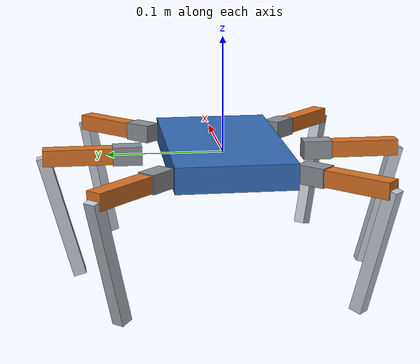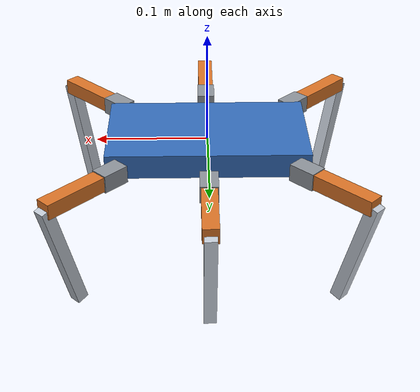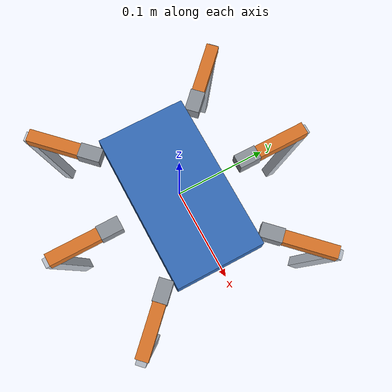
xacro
<?xml version="1.0"?>
<robot xmlns:xacro="http://www.ros.org/wiki/xacro" name="hexapod_body">
  <material name="body"><color rgba="0.20 0.42 0.72 1"/></material>
  <material name="coxa"><color rgba="0.55 0.57 0.60 1"/></material>
  <material name="femur"><color rgba="0.85 0.45 0.15 1"/></material>
  <material name="tibia"><color rgba="0.75 0.78 0.82 1"/></material>
  <material name="arm"><color rgba="0.35 0.36 0.40 1"/></material>
  <link name="base_link">
    <collision><geometry><box size="0.18000 0.10000 0.02200"/></geometry></collision>
    <visual><geometry><box size="0.18000 0.10000 0.02200"/></geometry><material name="body"/></visual>
    <inertial>
      <origin xyz="0.00000 0.00000 0.00000"/>
      <mass value="0.737"/>
      <inertia ixx="6.439e-04" iyy="2.020e-03" izz="2.604e-03" ixy="0" ixz="0" iyz="0"/>
    </inertial>
  </link>

  <!-- leg FL -->
  <joint name="FL_coxa" type="revolute">
    <parent link="base_link"/>
    <child link="FL_coxa_link"/>
    <origin xyz="0.07500 0.05500 0.00000" rpy="0.00000 0.00000 0.78540"/>
    <axis xyz="0 0 1"/>
    <limit lower="-1.3963" upper="1.3963" effort="1.1" velocity="6.5"/>
    <dynamics damping="0.01"/>
  </joint>
  <link name="FL_coxa_link">
    <collision>
      <origin xyz="0.01250 0.00000 0.00000"/>
      <geometry><box size="0.02500 0.01600 0.01600"/></geometry>
    </collision>
    <visual>
      <origin xyz="0.01250 0.00000 0.00000"/>
      <geometry><box size="0.02500 0.01600 0.01600"/></geometry>
      <material name="coxa"/>
    </visual>
    <inertial>
      <origin xyz="0.01250 0.00000 0.00000"/>
      <mass value="0.065"/>
      <inertia ixx="5.028e-04" iyy="5.048e-04" izz="5.048e-04" ixy="0" ixz="0" iyz="0"/>
    </inertial>
  </link>
  <joint name="FL_femur" type="revolute">
    <parent link="FL_coxa_link"/>
    <child link="FL_femur_link"/>
    <origin xyz="0.02500 0.00000 0.00000" rpy="0.00000 0.00000 0.00000"/>
    <axis xyz="0 -1 0"/>
    <limit lower="-0.6109" upper="2.1817" effort="1.1" velocity="6.5"/>
    <dynamics damping="0.01"/>
  </joint>
  <link name="FL_femur_link">
    <collision>
      <origin xyz="0.02950 0.00000 0.00000"/>
      <geometry><box size="0.05900 0.01400 0.01400"/></geometry>
    </collision>
    <visual>
      <origin xyz="0.02950 0.00000 0.00000"/>
      <geometry><box size="0.05900 0.01400 0.01400"/></geometry>
      <material name="femur"/>
    </visual>
    <inertial>
      <origin xyz="0.02950 0.00000 0.00000"/>
      <mass value="0.063"/>
      <inertia ixx="5.021e-04" iyy="5.193e-04" izz="5.193e-04" ixy="0" ixz="0" iyz="0"/>
    </inertial>
  </link>
  <joint name="FL_tibia" type="revolute">
    <parent link="FL_femur_link"/>
    <child link="FL_tibia_link"/>
    <origin xyz="0.05900 0.00000 0.00000" rpy="0.00000 0.00000 0.00000"/>
    <axis xyz="0 -1 0"/>
    <limit lower="-3.2289" upper="-0.4363" effort="1.1" velocity="6.5"/>
    <dynamics damping="0.01"/>
  </joint>
  <link name="FL_tibia_link">
    <collision>
      <origin xyz="0.10900 0 0"/>
      <geometry><sphere radius="0.008"/></geometry>
    </collision>
    <collision>
      <origin xyz="0.05450 0.00000 0.00000" rpy="0 1.570796 0"/>
      <geometry><cylinder radius="0.0055" length="0.0930"/></geometry>
    </collision>
    <visual>
      <origin xyz="0.05450 0.00000 0.00000"/>
      <geometry><box size="0.10900 0.01100 0.01100"/></geometry>
      <material name="tibia"/>
    </visual>
    <inertial>
      <origin xyz="0.05450 0.00000 0.00000"/>
      <mass value="0.008"/>
      <inertia ixx="5.002e-04" iyy="5.080e-04" izz="5.080e-04" ixy="0" ixz="0" iyz="0"/>
    </inertial>
  </link>

  <!-- leg ML -->
  <joint name="ML_coxa" type="revolute">
    <parent link="base_link"/>
    <child link="ML_coxa_link"/>
    <origin xyz="0.00000 0.07000 0.00000" rpy="0.00000 0.00000 1.57080"/>
    <axis xyz="0 0 1"/>
    <limit lower="-1.3963" upper="1.3963" effort="1.1" velocity="6.5"/>
    <dynamics damping="0.01"/>
  </joint>
  <link name="ML_coxa_link">
    <collision>
      <origin xyz="0.01250 0.00000 0.00000"/>
      <geometry><box size="0.02500 0.01600 0.01600"/></geometry>
    </collision>
    <visual>
      <origin xyz="0.01250 0.00000 0.00000"/>
      <geometry><box size="0.02500 0.01600 0.01600"/></geometry>
      <material name="coxa"/>
    </visual>
    <inertial>
      <origin xyz="0.01250 0.00000 0.00000"/>
      <mass value="0.065"/>
      <inertia ixx="5.028e-04" iyy="5.048e-04" izz="5.048e-04" ixy="0" ixz="0" iyz="0"/>
    </inertial>
  </link>
  <joint name="ML_femur" type="revolute">
    <parent link="ML_coxa_link"/>
    <child link="ML_femur_link"/>
    <origin xyz="0.02500 0.00000 0.00000" rpy="0.00000 0.00000 0.00000"/>
    <axis xyz="0 -1 0"/>
    <limit lower="-0.6109" upper="2.1817" effort="1.1" velocity="6.5"/>
    <dynamics damping="0.01"/>
  </joint>
  <link name="ML_femur_link">
    <collision>
      <origin xyz="0.02950 0.00000 0.00000"/>
      <geometry><box size="0.05900 0.01400 0.01400"/></geometry>
    </collision>
    <visual>
      <origin xyz="0.02950 0.00000 0.00000"/>
      <geometry><box size="0.05900 0.01400 0.01400"/></geometry>
      <material name="femur"/>
    </visual>
    <inertial>
      <origin xyz="0.02950 0.00000 0.00000"/>
      <mass value="0.063"/>
      <inertia ixx="5.021e-04" iyy="5.193e-04" izz="5.193e-04" ixy="0" ixz="0" iyz="0"/>
    </inertial>
  </link>
  <joint name="ML_tibia" type="revolute">
    <parent link="ML_femur_link"/>
    <child link="ML_tibia_link"/>
    <origin xyz="0.05900 0.00000 0.00000" rpy="0.00000 0.00000 0.00000"/>
    <axis xyz="0 -1 0"/>
    <limit lower="-3.2289" upper="-0.4363" effort="1.1" velocity="6.5"/>
    <dynamics damping="0.01"/>
  </joint>
  <link name="ML_tibia_link">
    <collision>
      <origin xyz="0.10900 0 0"/>
      <geometry><sphere radius="0.008"/></geometry>
    </collision>
    <collision>
      <origin xyz="0.05450 0.00000 0.00000" rpy="0 1.570796 0"/>
      <geometry><cylinder radius="0.0055" length="0.0930"/></geometry>
    </collision>
    <visual>
      <origin xyz="0.05450 0.00000 0.00000"/>
      <geometry><box size="0.10900 0.01100 0.01100"/></geometry>
      <material name="tibia"/>
    </visual>
    <inertial>
      <origin xyz="0.05450 0.00000 0.00000"/>
      <mass value="0.008"/>
      <inertia ixx="5.002e-04" iyy="5.080e-04" izz="5.080e-04" ixy="0" ixz="0" iyz="0"/>
    </inertial>
  </link>

  <!-- leg RL -->
  <joint name="RL_coxa" type="revolute">
    <parent link="base_link"/>
    <child link="RL_coxa_link"/>
    <origin xyz="-0.07500 0.05500 0.00000" rpy="0.00000 0.00000 2.35619"/>
    <axis xyz="0 0 1"/>
    <limit lower="-1.3963" upper="1.3963" effort="1.1" velocity="6.5"/>
    <dynamics damping="0.01"/>
  </joint>
  <link name="RL_coxa_link">
    <collision>
      <origin xyz="0.01250 0.00000 0.00000"/>
      <geometry><box size="0.02500 0.01600 0.01600"/></geometry>
    </collision>
    <visual>
      <origin xyz="0.01250 0.00000 0.00000"/>
      <geometry><box size="0.02500 0.01600 0.01600"/></geometry>
      <material name="coxa"/>
    </visual>
    <inertial>
      <origin xyz="0.01250 0.00000 0.00000"/>
      <mass value="0.065"/>
      <inertia ixx="5.028e-04" iyy="5.048e-04" izz="5.048e-04" ixy="0" ixz="0" iyz="0"/>
    </inertial>
  </link>
  <joint name="RL_femur" type="revolute">
    <parent link="RL_coxa_link"/>
    <child link="RL_femur_link"/>
    <origin xyz="0.02500 0.00000 0.00000" rpy="0.00000 0.00000 0.00000"/>
    <axis xyz="0 -1 0"/>
    <limit lower="-0.6109" upper="2.1817" effort="1.1" velocity="6.5"/>
    <dynamics damping="0.01"/>
  </joint>
  <link name="RL_femur_link">
    <collision>
      <origin xyz="0.02950 0.00000 0.00000"/>
      <geometry><box size="0.05900 0.01400 0.01400"/></geometry>
    </collision>
    <visual>
      <origin xyz="0.02950 0.00000 0.00000"/>
      <geometry><box size="0.05900 0.01400 0.01400"/></geometry>
      <material name="femur"/>
    </visual>
    <inertial>
      <origin xyz="0.02950 0.00000 0.00000"/>
      <mass value="0.063"/>
      <inertia ixx="5.021e-04" iyy="5.193e-04" izz="5.193e-04" ixy="0" ixz="0" iyz="0"/>
    </inertial>
  </link>
  <joint name="RL_tibia" type="revolute">
    <parent link="RL_femur_link"/>
    <child link="RL_tibia_link"/>
    <origin xyz="0.05900 0.00000 0.00000" rpy="0.00000 0.00000 0.00000"/>
    <axis xyz="0 -1 0"/>
    <limit lower="-3.2289" upper="-0.4363" effort="1.1" velocity="6.5"/>
    <dynamics damping="0.01"/>
  </joint>
  <link name="RL_tibia_link">
    <collision>
      <origin xyz="0.10900 0 0"/>
      <geometry><sphere radius="0.008"/></geometry>
    </collision>
    <collision>
      <origin xyz="0.05450 0.00000 0.00000" rpy="0 1.570796 0"/>
      <geometry><cylinder radius="0.0055" length="0.0930"/></geometry>
    </collision>
    <visual>
      <origin xyz="0.05450 0.00000 0.00000"/>
      <geometry><box size="0.10900 0.01100 0.01100"/></geometry>
      <material name="tibia"/>
    </visual>
    <inertial>
      <origin xyz="0.05450 0.00000 0.00000"/>
      <mass value="0.008"/>
      <inertia ixx="5.002e-04" iyy="5.080e-04" izz="5.080e-04" ixy="0" ixz="0" iyz="0"/>
    </inertial>
  </link>

  <!-- leg FR -->
  <joint name="FR_coxa" type="revolute">
    <parent link="base_link"/>
    <child link="FR_coxa_link"/>
    <origin xyz="0.07500 -0.05500 0.00000" rpy="0.00000 0.00000 -0.78540"/>
    <axis xyz="0 0 1"/>
    <limit lower="-1.3963" upper="1.3963" effort="1.1" velocity="6.5"/>
    <dynamics damping="0.01"/>
  </joint>
  <link name="FR_coxa_link">
    <collision>
      <origin xyz="0.01250 0.00000 0.00000"/>
      <geometry><box size="0.02500 0.01600 0.01600"/></geometry>
    </collision>
    <visual>
      <origin xyz="0.01250 0.00000 0.00000"/>
      <geometry><box size="0.02500 0.01600 0.01600"/></geometry>
      <material name="coxa"/>
    </visual>
    <inertial>
      <origin xyz="0.01250 0.00000 0.00000"/>
      <mass value="0.065"/>
      <inertia ixx="5.028e-04" iyy="5.048e-04" izz="5.048e-04" ixy="0" ixz="0" iyz="0"/>
    </inertial>
  </link>
  <joint name="FR_femur" type="revolute">
    <parent link="FR_coxa_link"/>
    <child link="FR_femur_link"/>
    <origin xyz="0.02500 0.00000 0.00000" rpy="0.00000 0.00000 0.00000"/>
    <axis xyz="0 -1 0"/>
    <limit lower="-0.6109" upper="2.1817" effort="1.1" velocity="6.5"/>
    <dynamics damping="0.01"/>
  </joint>
  <link name="FR_femur_link">
    <collision>
      <origin xyz="0.02950 0.00000 0.00000"/>
      <geometry><box size="0.05900 0.01400 0.01400"/></geometry>
    </collision>
    <visual>
      <origin xyz="0.02950 0.00000 0.00000"/>
      <geometry><box size="0.05900 0.01400 0.01400"/></geometry>
      <material name="femur"/>
    </visual>
    <inertial>
      <origin xyz="0.02950 0.00000 0.00000"/>
      <mass value="0.063"/>
      <inertia ixx="5.021e-04" iyy="5.193e-04" izz="5.193e-04" ixy="0" ixz="0" iyz="0"/>
    </inertial>
  </link>
  <joint name="FR_tibia" type="revolute">
    <parent link="FR_femur_link"/>
    <child link="FR_tibia_link"/>
    <origin xyz="0.05900 0.00000 0.00000" rpy="0.00000 0.00000 0.00000"/>
    <axis xyz="0 -1 0"/>
    <limit lower="-3.2289" upper="-0.4363" effort="1.1" velocity="6.5"/>
    <dynamics damping="0.01"/>
  </joint>
  <link name="FR_tibia_link">
    <collision>
      <origin xyz="0.10900 0 0"/>
      <geometry><sphere radius="0.008"/></geometry>
    </collision>
    <collision>
      <origin xyz="0.05450 0.00000 0.00000" rpy="0 1.570796 0"/>
      <geometry><cylinder radius="0.0055" length="0.0930"/></geometry>
    </collision>
    <visual>
      <origin xyz="0.05450 0.00000 0.00000"/>
      <geometry><box size="0.10900 0.01100 0.01100"/></geometry>
      <material name="tibia"/>
    </visual>
    <inertial>
      <origin xyz="0.05450 0.00000 0.00000"/>
      <mass value="0.008"/>
      <inertia ixx="5.002e-04" iyy="5.080e-04" izz="5.080e-04" ixy="0" ixz="0" iyz="0"/>
    </inertial>
  </link>

  <!-- leg MR -->
  <joint name="MR_coxa" type="revolute">
    <parent link="base_link"/>
    <child link="MR_coxa_link"/>
    <origin xyz="0.00000 -0.07000 0.00000" rpy="0.00000 0.00000 -1.57080"/>
    <axis xyz="0 0 1"/>
    <limit lower="-1.3963" upper="1.3963" effort="1.1" velocity="6.5"/>
    <dynamics damping="0.01"/>
  </joint>
  <link name="MR_coxa_link">
    <collision>
      <origin xyz="0.01250 0.00000 0.00000"/>
      <geometry><box size="0.02500 0.01600 0.01600"/></geometry>
    </collision>
    <visual>
      <origin xyz="0.01250 0.00000 0.00000"/>
      <geometry><box size="0.02500 0.01600 0.01600"/></geometry>
      <material name="coxa"/>
    </visual>
    <inertial>
      <origin xyz="0.01250 0.00000 0.00000"/>
      <mass value="0.065"/>
      <inertia ixx="5.028e-04" iyy="5.048e-04" izz="5.048e-04" ixy="0" ixz="0" iyz="0"/>
    </inertial>
  </link>
  <joint name="MR_femur" type="revolute">
    <parent link="MR_coxa_link"/>
    <child link="MR_femur_link"/>
    <origin xyz="0.02500 0.00000 0.00000" rpy="0.00000 0.00000 0.00000"/>
    <axis xyz="0 -1 0"/>
    <limit lower="-0.6109" upper="2.1817" effort="1.1" velocity="6.5"/>
    <dynamics damping="0.01"/>
  </joint>
  <link name="MR_femur_link">
    <collision>
      <origin xyz="0.02950 0.00000 0.00000"/>
      <geometry><box size="0.05900 0.01400 0.01400"/></geometry>
    </collision>
    <visual>
      <origin xyz="0.02950 0.00000 0.00000"/>
      <geometry><box size="0.05900 0.01400 0.01400"/></geometry>
      <material name="femur"/>
    </visual>
    <inertial>
      <origin xyz="0.02950 0.00000 0.00000"/>
      <mass value="0.063"/>
      <inertia ixx="5.021e-04" iyy="5.193e-04" izz="5.193e-04" ixy="0" ixz="0" iyz="0"/>
    </inertial>
  </link>
  <joint name="MR_tibia" type="revolute">
    <parent link="MR_femur_link"/>
    <child link="MR_tibia_link"/>
    <origin xyz="0.05900 0.00000 0.00000" rpy="0.00000 0.00000 0.00000"/>
    <axis xyz="0 -1 0"/>
    <limit lower="-3.2289" upper="-0.4363" effort="1.1" velocity="6.5"/>
    <dynamics damping="0.01"/>
  </joint>
  <link name="MR_tibia_link">
    <collision>
      <origin xyz="0.10900 0 0"/>
      <geometry><sphere radius="0.008"/></geometry>
    </collision>
    <collision>
      <origin xyz="0.05450 0.00000 0.00000" rpy="0 1.570796 0"/>
      <geometry><cylinder radius="0.0055" length="0.0930"/></geometry>
    </collision>
    <visual>
      <origin xyz="0.05450 0.00000 0.00000"/>
      <geometry><box size="0.10900 0.01100 0.01100"/></geometry>
      <material name="tibia"/>
    </visual>
    <inertial>
      <origin xyz="0.05450 0.00000 0.00000"/>
      <mass value="0.008"/>
      <inertia ixx="5.002e-04" iyy="5.080e-04" izz="5.080e-04" ixy="0" ixz="0" iyz="0"/>
    </inertial>
  </link>

  <!-- leg RR -->
  <joint name="RR_coxa" type="revolute">
    <parent link="base_link"/>
    <child link="RR_coxa_link"/>
    <origin xyz="-0.07500 -0.05500 0.00000" rpy="0.00000 0.00000 -2.35619"/>
    <axis xyz="0 0 1"/>
    <limit lower="-1.3963" upper="1.3963" effort="1.1" velocity="6.5"/>
    <dynamics damping="0.01"/>
  </joint>
  <link name="RR_coxa_link">
    <collision>
      <origin xyz="0.01250 0.00000 0.00000"/>
      <geometry><box size="0.02500 0.01600 0.01600"/></geometry>
    </collision>
    <visual>
      <origin xyz="0.01250 0.00000 0.00000"/>
      <geometry><box size="0.02500 0.01600 0.01600"/></geometry>
      <material name="coxa"/>
    </visual>
    <inertial>
      <origin xyz="0.01250 0.00000 0.00000"/>
      <mass value="0.065"/>
      <inertia ixx="5.028e-04" iyy="5.048e-04" izz="5.048e-04" ixy="0" ixz="0" iyz="0"/>
    </inertial>
  </link>
  <joint name="RR_femur" type="revolute">
    <parent link="RR_coxa_link"/>
    <child link="RR_femur_link"/>
    <origin xyz="0.02500 0.00000 0.00000" rpy="0.00000 0.00000 0.00000"/>
    <axis xyz="0 -1 0"/>
    <limit lower="-0.6109" upper="2.1817" effort="1.1" velocity="6.5"/>
    <dynamics damping="0.01"/>
  </joint>
  <link name="RR_femur_link">
    <collision>
      <origin xyz="0.02950 0.00000 0.00000"/>
      <geometry><box size="0.05900 0.01400 0.01400"/></geometry>
    </collision>
    <visual>
      <origin xyz="0.02950 0.00000 0.00000"/>
      <geometry><box size="0.05900 0.01400 0.01400"/></geometry>
      <material name="femur"/>
    </visual>
    <inertial>
      <origin xyz="0.02950 0.00000 0.00000"/>
      <mass value="0.063"/>
      <inertia ixx="5.021e-04" iyy="5.193e-04" izz="5.193e-04" ixy="0" ixz="0" iyz="0"/>
    </inertial>
  </link>
  <joint name="RR_tibia" type="revolute">
    <parent link="RR_femur_link"/>
    <child link="RR_tibia_link"/>
    <origin xyz="0.05900 0.00000 0.00000" rpy="0.00000 0.00000 0.00000"/>
    <axis xyz="0 -1 0"/>
    <limit lower="-3.2289" upper="-0.4363" effort="1.1" velocity="6.5"/>
    <dynamics damping="0.01"/>
  </joint>
  <link name="RR_tibia_link">
    <collision>
      <origin xyz="0.10900 0 0"/>
      <geometry><sphere radius="0.008"/></geometry>
    </collision>
    <collision>
      <origin xyz="0.05450 0.00000 0.00000" rpy="0 1.570796 0"/>
      <geometry><cylinder radius="0.0055" length="0.0930"/></geometry>
    </collision>
    <visual>
      <origin xyz="0.05450 0.00000 0.00000"/>
      <geometry><box size="0.10900 0.01100 0.01100"/></geometry>
      <material name="tibia"/>
    </visual>
    <inertial>
      <origin xyz="0.05450 0.00000 0.00000"/>
      <mass value="0.008"/>
      <inertia ixx="5.002e-04" iyy="5.080e-04" izz="5.080e-04" ixy="0" ixz="0" iyz="0"/>
    </inertial>
  </link>
</robot>
